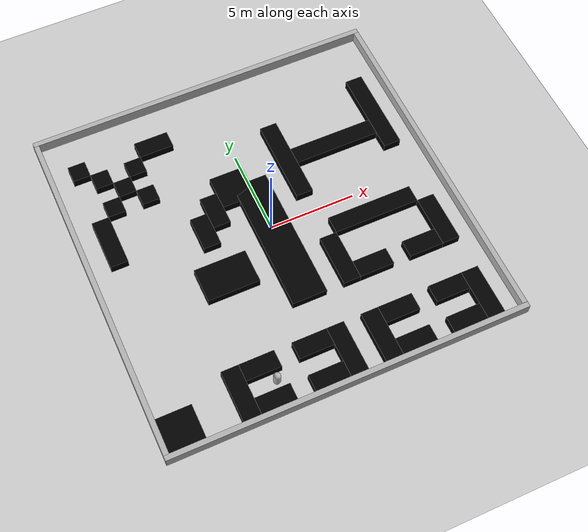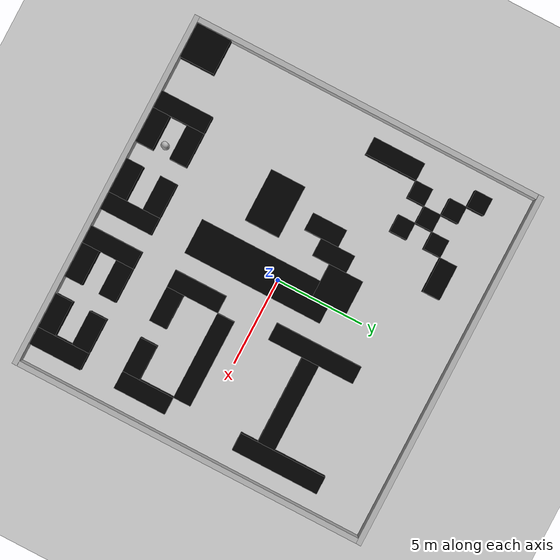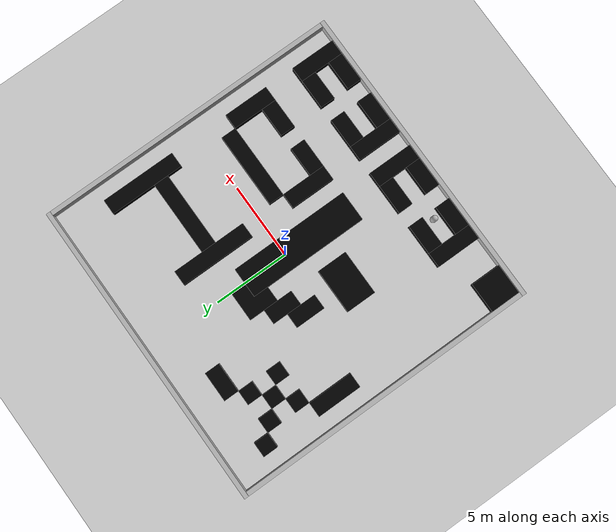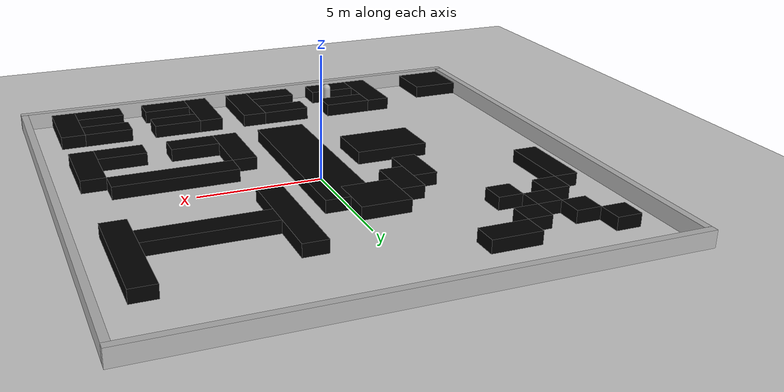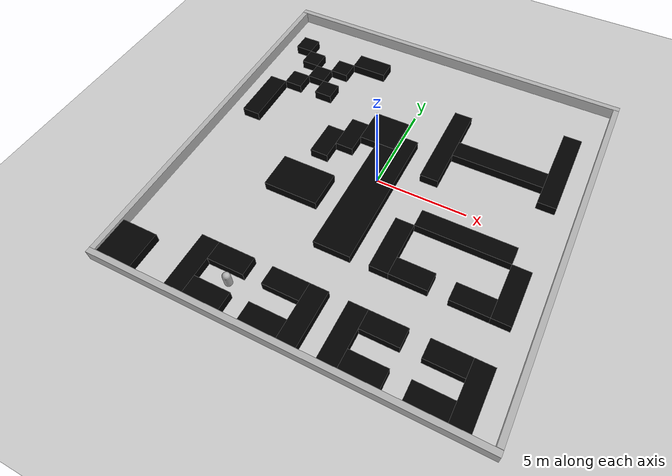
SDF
<sdf version="1.10">
 <world name="empty">
  <model name="ground_plane">
   <static>true</static>
   <link name="link">
    <collision name="collision">
     <geometry><plane><normal>0 0 1</normal><size>100 100</size></plane></geometry>
    </collision>
    <visual name="visual">
     <geometry><plane><normal>0 0 1</normal><size>100 100</size></plane></geometry>
     <material>
      <ambient>0.800000012 0.800000012 0.800000012 1</ambient>
      <diffuse>0.800000012 0.800000012 0.800000012 1</diffuse>
      <specular>0.800000012 0.800000012 0.800000012 1</specular>
     </material>
    </visual>
    <inertial>
     <mass>100</mass>
     <inertia><ixx>1</ixx><ixy>0</ixy><ixz>0</ixz><iyy>1</iyy><iyz>0</iyz><izz>1</izz></inertia>
    </inertial>
   </link>
  </model>
  <model name="left_wall">
   <pose>-10.15 0 0.14999999999999999 0 0 0</pose>
   <link name="left_wall_link">
    <inertial>
     <inertia><ixx>0.16666</ixx><ixy>0</ixy><ixz>0</ixz><iyy>0.16666</iyy><iyz>0</iyz><izz>0.16666</izz></inertia>
     <mass>1</mass>
    </inertial>
    <collision name="left_wall_collision">
     <geometry><box><size>0.29999999999999999 20 1</size></box></geometry>
    </collision>
    <visual name="left_wall_visual">
     <geometry><box><size>0.29999999999999999 20 1</size></box></geometry>
     <material>
      <ambient>0.300000012 0.300000012 0.300000012 1</ambient>
      <diffuse>0.699999988 0.699999988 0.699999988 1</diffuse>
      <specular>1 1 1 1</specular>
     </material>
    </visual>
   </link>
   <static>true</static>
  </model>
  <model name="right_wall">
   <pose>10.15 0 0.14999999999999999 0 0 0</pose>
   <link name="right_wall_link">
    <inertial>
     <inertia><ixx>0.16666</ixx><ixy>0</ixy><ixz>0</ixz><iyy>0.16666</iyy><iyz>0</iyz><izz>0.16666</izz></inertia>
     <mass>100</mass>
    </inertial>
    <collision name="right_wall_collision">
     <geometry><box><size>0.29999999999999999 20 1</size></box></geometry>
    </collision>
    <visual name="right_wall_visual">
     <geometry><box><size>0.29999999999999999 20 1</size></box></geometry>
     <material>
      <ambient>0.300000012 0.300000012 0.300000012 1</ambient>
      <diffuse>0.699999988 0.699999988 0.699999988 1</diffuse>
      <specular>1 1 1 1</specular>
     </material>
    </visual>
   </link>
   <static>true</static>
  </model>
  <model name="top_wall">
   <pose>0 10.15 0.14999999999999999 0 0 1.5699999999999998</pose>
   <link name="top_wall_link">
    <inertial>
     <inertia><ixx>0.16666</ixx><ixy>0</ixy><ixz>0</ixz><iyy>0.16666</iyy><iyz>0</iyz><izz>0.16666</izz></inertia>
     <mass>100</mass>
    </inertial>
    <collision name="top_wall_collision">
     <geometry><box><size>0.29999999999999999 20 1</size></box></geometry>
    </collision>
    <visual name="top_wall_visual">
     <geometry><box><size>0.29999999999999999 20.600000000000001 1</size></box></geometry>
     <material>
      <ambient>0.300000012 0.300000012 0.300000012 1</ambient>
      <diffuse>0.699999988 0.699999988 0.699999988 1</diffuse>
      <specular>1 1 1 1</specular>
     </material>
    </visual>
   </link>
   <static>true</static>
  </model>
  <model name="bottom_wall">
   <pose>0 -10.15 0.14999999999999999 0 0 1.5699999999999998</pose>
   <link name="bottom_wall_link">
    <inertial>
     <inertia><ixx>0.16666</ixx><ixy>0</ixy><ixz>0</ixz><iyy>0.16666</iyy><iyz>0</iyz><izz>0.16666</izz></inertia>
     <mass>100</mass>
    </inertial>
    <collision name="bottom_wall_collision">
     <geometry><box><size>0.29999999999999999 20 1</size></box></geometry>
    </collision>
    <visual name="bottom_wall_visual">
     <geometry><box><size>0.29999999999999999 20.600000000000001 1</size></box></geometry>
     <material>
      <ambient>0.300000012 0.300000012 0.300000012 1</ambient>
      <diffuse>0.699999988 0.699999988 0.699999988 1</diffuse>
      <specular>1 1 1 1</specular>
     </material>
    </visual>
   </link>
   <static>true</static>
  </model>
  <model name="black_box_1x1_1">
   <static>true</static>
   <pose>-8.5 7.5 0 0 0 0</pose>
   <link name="link">
    <collision name="collision"><geometry><box><size>1 1 1</size></box></geometry></collision>
    <visual name="visual">
     <geometry><box><size>1 1 1</size></box></geometry>
     <material><ambient>0 0 0 1</ambient></material>
    </visual>
    <inertial>
     <mass>1</mass>
     <inertia><ixx>1</ixx><ixy>0</ixy><ixz>0</ixz><iyy>1</iyy><iyz>0</iyz><izz>1</izz></inertia>
    </inertial>
   </link>
  </model>
  <model name="black_box_1x1_2">
   <static>true</static>
   <pose>-6.5 5.5 0 0 0 0</pose>
   <link name="link">
    <collision name="collision"><geometry><box><size>1 1 1</size></box></geometry></collision>
    <visual name="visual">
     <geometry><box><size>1 1 1</size></box></geometry>
     <material><ambient>0 0 0 1</ambient></material>
    </visual>
    <inertial>
     <mass>1</mass>
     <inertia><ixx>1</ixx><ixy>0</ixy><ixz>0</ixz><iyy>1</iyy><iyz>0</iyz><izz>1</izz></inertia>
    </inertial>
   </link>
  </model>
  <model name="black_box_1x1_3">
   <static>true</static>
   <pose>-7.5 6.5 0 0 0 0</pose>
   <link name="link">
    <collision name="collision"><geometry><box><size>1 1 1</size></box></geometry></collision>
    <visual name="visual">
     <geometry><box><size>1 1 1</size></box></geometry>
     <material><ambient>0 0 0 1</ambient></material>
    </visual>
    <inertial>
     <mass>1</mass>
     <inertia><ixx>1</ixx><ixy>0</ixy><ixz>0</ixz><iyy>1</iyy><iyz>0</iyz><izz>1</izz></inertia>
    </inertial>
   </link>
  </model>
  <model name="black_box_1x1_4">
   <static>true</static>
   <pose>-5.5 6.5 0 0 0 0</pose>
   <link name="link">
    <collision name="collision"><geometry><box><size>1 1 1</size></box></geometry></collision>
    <visual name="visual">
     <geometry><box><size>1 1 1</size></box></geometry>
     <material><ambient>0 0 0 1</ambient></material>
    </visual>
    <inertial>
     <mass>1</mass>
     <inertia><ixx>1</ixx><ixy>0</ixy><ixz>0</ixz><iyy>1</iyy><iyz>0</iyz><izz>1</izz></inertia>
    </inertial>
   </link>
  </model>
  <model name="black_box_1x1_5">
   <static>true</static>
   <pose>-5.5 4.5 0 0 0 0</pose>
   <link name="link">
    <collision name="collision"><geometry><box><size>1 1 1</size></box></geometry></collision>
    <visual name="visual">
     <geometry><box><size>1 1 1</size></box></geometry>
     <material><ambient>0 0 0 1</ambient></material>
    </visual>
    <inertial>
     <mass>1</mass>
     <inertia><ixx>1</ixx><ixy>0</ixy><ixz>0</ixz><iyy>1</iyy><iyz>0</iyz><izz>1</izz></inertia>
    </inertial>
   </link>
  </model>
  <model name="black_box_1x1_6">
   <static>true</static>
   <pose>-7.5 4.5 0 0 0 0</pose>
   <link name="link">
    <collision name="collision"><geometry><box><size>1 1 1</size></box></geometry></collision>
    <visual name="visual">
     <geometry><box><size>1 1 1</size></box></geometry>
     <material><ambient>0 0 0 1</ambient></material>
    </visual>
    <inertial>
     <mass>1</mass>
     <inertia><ixx>1</ixx><ixy>0</ixy><ixz>0</ixz><iyy>1</iyy><iyz>0</iyz><izz>1</izz></inertia>
    </inertial>
   </link>
  </model>
  <model name="black_box_1x3_1">
   <static>true</static>
   <pose>8.5 -8.5 0 0 0 0</pose>
   <link name="link">
    <collision name="collision"><geometry><box><size>1 3 1</size></box></geometry></collision>
    <visual name="visual">
     <geometry><box><size>1 3 1</size></box></geometry>
     <material><ambient>0 0 0 1</ambient></material>
    </visual>
    <inertial>
     <mass>2</mass>
     <inertia><ixx>1</ixx><ixy>0</ixy><ixz>0</ixz><iyy>1</iyy><iyz>0</iyz><izz>1</izz></inertia>
    </inertial>
   </link>
  </model>
  <model name="black_box_1x3_2">
   <static>true</static>
   <pose>0.5 -8.5 0 0 0 0</pose>
   <link name="link">
    <collision name="collision"><geometry><box><size>1 3 1</size></box></geometry></collision>
    <visual name="visual">
     <geometry><box><size>1 3 1</size></box></geometry>
     <material><ambient>0 0 0 1</ambient></material>
    </visual>
    <inertial>
     <mass>2</mass>
     <inertia><ixx>1</ixx><ixy>0</ixy><ixz>0</ixz><iyy>1</iyy><iyz>0</iyz><izz>1</izz></inertia>
    </inertial>
   </link>
  </model>
  <model name="black_box_1x3_3">
   <static>true</static>
   <pose>-5.5 -8.5 0 0 0 0</pose>
   <link name="link">
    <collision name="collision"><geometry><box><size>1 3 1</size></box></geometry></collision>
    <visual name="visual">
     <geometry><box><size>1 3 1</size></box></geometry>
     <material><ambient>0 0 0 1</ambient></material>
    </visual>
    <inertial>
     <mass>2</mass>
     <inertia><ixx>1</ixx><ixy>0</ixy><ixz>0</ixz><iyy>1</iyy><iyz>0</iyz><izz>1</izz></inertia>
    </inertial>
   </link>
  </model>
  <model name="black_box_1x3_4">
   <static>true</static>
   <pose>2.5 -8.5 0 0 0 0</pose>
   <link name="link">
    <collision name="collision"><geometry><box><size>1 3 1</size></box></geometry></collision>
    <visual name="visual">
     <geometry><box><size>1 3 1</size></box></geometry>
     <material><ambient>0 0 0 1</ambient></material>
    </visual>
    <inertial>
     <mass>2</mass>
     <inertia><ixx>1</ixx><ixy>0</ixy><ixz>0</ixz><iyy>1</iyy><iyz>0</iyz><izz>1</izz></inertia>
    </inertial>
   </link>
  </model>
  <model name="black_box_1x3_5">
   <static>true</static>
   <pose>2.5 -3.5 0 0 0 0</pose>
   <link name="link">
    <collision name="collision"><geometry><box><size>1 3 1</size></box></geometry></collision>
    <visual name="visual">
     <geometry><box><size>1 3 1</size></box></geometry>
     <material><ambient>0 0 0 1</ambient></material>
    </visual>
    <inertial>
     <mass>2</mass>
     <inertia><ixx>1</ixx><ixy>0</ixy><ixz>0</ixz><iyy>1</iyy><iyz>0</iyz><izz>1</izz></inertia>
    </inertial>
   </link>
  </model>
  <model name="black_box_1x3_6">
   <static>true</static>
   <pose>-8.5 2.5 0 0 0 0</pose>
   <link name="link">
    <collision name="collision"><geometry><box><size>1 3 1</size></box></geometry></collision>
    <visual name="visual">
     <geometry><box><size>1 3 1</size></box></geometry>
     <material><ambient>0 0 0 1</ambient></material>
    </visual>
    <inertial>
     <mass>2</mass>
     <inertia><ixx>1</ixx><ixy>0</ixy><ixz>0</ixz><iyy>1</iyy><iyz>0</iyz><izz>1</izz></inertia>
    </inertial>
   </link>
  </model>
  <model name="black_box_1x5_1">
   <static>true</static>
   <pose>2.5 3.5 0 0 0 0</pose>
   <link name="link">
    <collision name="collision"><geometry><box><size>1 5 1</size></box></geometry></collision>
    <visual name="visual">
     <geometry><box><size>1 5 1</size></box></geometry>
     <material><ambient>0 0 0 1</ambient></material>
    </visual>
    <inertial>
     <mass>2</mass>
     <inertia><ixx>1</ixx><ixy>0</ixy><ixz>0</ixz><iyy>1</iyy><iyz>0</iyz><izz>1</izz></inertia>
    </inertial>
   </link>
  </model>
  <model name="black_box_1x5_2">
   <static>true</static>
   <pose>8.5 4.5 0 0 0 0</pose>
   <link name="link">
    <collision name="collision"><geometry><box><size>1 5 1</size></box></geometry></collision>
    <visual name="visual">
     <geometry><box><size>1 5 1</size></box></geometry>
     <material><ambient>0 0 0 1</ambient></material>
    </visual>
    <inertial>
     <mass>2</mass>
     <inertia><ixx>1</ixx><ixy>0</ixy><ixz>0</ixz><iyy>1</iyy><iyz>0</iyz><izz>1</izz></inertia>
    </inertial>
   </link>
  </model>
  <model name="black_box_1x3_8">
   <static>true</static>
   <pose>8.5 -3.5 0 0 0 0</pose>
   <link name="link">
    <collision name="collision"><geometry><box><size>1 3 1</size></box></geometry></collision>
    <visual name="visual">
     <geometry><box><size>1 3 1</size></box></geometry>
     <material><ambient>0 0 0 1</ambient></material>
    </visual>
    <inertial>
     <mass>2</mass>
     <inertia><ixx>1</ixx><ixy>0</ixy><ixz>0</ixz><iyy>1</iyy><iyz>0</iyz><izz>1</izz></inertia>
    </inertial>
   </link>
  </model>
  <model name="black_box_2x1_1">
   <static>true</static>
   <pose>7 -9.5 0 0 0 0</pose>
   <link name="link">
    <collision name="collision"><geometry><box><size>2 1 1</size></box></geometry></collision>
    <visual name="visual">
     <geometry><box><size>2 1 1</size></box></geometry>
     <material><ambient>0 0 0 1</ambient></material>
    </visual>
    <inertial>
     <mass>2</mass>
     <inertia><ixx>1</ixx><ixy>0</ixy><ixz>0</ixz><iyy>1</iyy><iyz>0</iyz><izz>1</izz></inertia>
    </inertial>
   </link>
  </model>
  <model name="black_box_2x1_2">
   <static>true</static>
   <pose>7 -7.5 0 0 0 0</pose>
   <link name="link">
    <collision name="collision"><geometry><box><size>2 1 1</size></box></geometry></collision>
    <visual name="visual">
     <geometry><box><size>2 1 1</size></box></geometry>
     <material><ambient>0 0 0 1</ambient></material>
    </visual>
    <inertial>
     <mass>2</mass>
     <inertia><ixx>1</ixx><ixy>0</ixy><ixz>0</ixz><iyy>1</iyy><iyz>0</iyz><izz>1</izz></inertia>
    </inertial>
   </link>
  </model>
  <model name="black_box_2x1_3">
   <static>true</static>
   <pose>4 -9.5 0 0 0 0</pose>
   <link name="link">
    <collision name="collision"><geometry><box><size>2 1 1</size></box></geometry></collision>
    <visual name="visual">
     <geometry><box><size>2 1 1</size></box></geometry>
     <material><ambient>0 0 0 1</ambient></material>
    </visual>
    <inertial>
     <mass>2</mass>
     <inertia><ixx>1</ixx><ixy>0</ixy><ixz>0</ixz><iyy>1</iyy><iyz>0</iyz><izz>1</izz></inertia>
    </inertial>
   </link>
  </model>
  <model name="black_box_2x1_4">
   <static>true</static>
   <pose>4 -7.5 0 0 0 0</pose>
   <link name="link">
    <collision name="collision"><geometry><box><size>2 1 1</size></box></geometry></collision>
    <visual name="visual">
     <geometry><box><size>2 1 1</size></box></geometry>
     <material><ambient>0 0 0 1</ambient></material>
    </visual>
    <inertial>
     <mass>2</mass>
     <inertia><ixx>1</ixx><ixy>0</ixy><ixz>0</ixz><iyy>1</iyy><iyz>0</iyz><izz>1</izz></inertia>
    </inertial>
   </link>
  </model>
  <model name="black_box_2x1_5">
   <static>true</static>
   <pose>-1 -9.5 0.0030920000000000001 0 0 0</pose>
   <link name="link">
    <collision name="collision"><geometry><box><size>2 1 1</size></box></geometry></collision>
    <visual name="visual">
     <geometry><box><size>2 1 1</size></box></geometry>
     <material><ambient>0 0 0 1</ambient></material>
    </visual>
    <inertial>
     <mass>2</mass>
     <inertia><ixx>1</ixx><ixy>0</ixy><ixz>0</ixz><iyy>1</iyy><iyz>0</iyz><izz>1</izz></inertia>
    </inertial>
   </link>
  </model>
  <model name="black_box_2x1_6">
   <static>true</static>
   <pose>7 -4.5 0 0 0 0</pose>
   <link name="link">
    <collision name="collision"><geometry><box><size>2 1 1</size></box></geometry></collision>
    <visual name="visual">
     <geometry><box><size>2 1 1</size></box></geometry>
     <material><ambient>0 0 0 1</ambient></material>
    </visual>
    <inertial>
     <mass>2</mass>
     <inertia><ixx>1</ixx><ixy>0</ixy><ixz>0</ixz><iyy>1</iyy><iyz>0</iyz><izz>1</izz></inertia>
    </inertial>
   </link>
  </model>
  <model name="black_box_2x1_7">
   <static>true</static>
   <pose>4 -4.5 0 0 0 0</pose>
   <link name="link">
    <collision name="collision"><geometry><box><size>2 1 1</size></box></geometry></collision>
    <visual name="visual">
     <geometry><box><size>2 1 1</size></box></geometry>
     <material><ambient>0 0 0 1</ambient></material>
    </visual>
    <inertial>
     <mass>2</mass>
     <inertia><ixx>1</ixx><ixy>0</ixy><ixz>0</ixz><iyy>1</iyy><iyz>0</iyz><izz>1</izz></inertia>
    </inertial>
   </link>
  </model>
  <model name="black_box_2x1_8">
   <static>true</static>
   <pose>-1 -7.5 0 0 0 0</pose>
   <link name="link">
    <collision name="collision"><geometry><box><size>2 1 1</size></box></geometry></collision>
    <visual name="visual">
     <geometry><box><size>2 1 1</size></box></geometry>
     <material><ambient>0 0 0 1</ambient></material>
    </visual>
    <inertial>
     <mass>2</mass>
     <inertia><ixx>1</ixx><ixy>0</ixy><ixz>0</ixz><iyy>1</iyy><iyz>0</iyz><izz>1</izz></inertia>
    </inertial>
   </link>
  </model>
  <model name="black_box_2x1_9">
   <static>true</static>
   <pose>-4 -7.5 0 0 0 0</pose>
   <link name="link">
    <collision name="collision"><geometry><box><size>2 1 1</size></box></geometry></collision>
    <visual name="visual">
     <geometry><box><size>2 1 1</size></box></geometry>
     <material><ambient>0 0 0 1</ambient></material>
    </visual>
    <inertial>
     <mass>2</mass>
     <inertia><ixx>1</ixx><ixy>0</ixy><ixz>0</ixz><iyy>1</iyy><iyz>0</iyz><izz>1</izz></inertia>
    </inertial>
   </link>
  </model>
  <model name="black_box_2x1_10">
   <static>true</static>
   <pose>-4 -9.5 0 0 0 0</pose>
   <link name="link">
    <collision name="collision"><geometry><box><size>2 1 1</size></box></geometry></collision>
    <visual name="visual">
     <geometry><box><size>2 1 1</size></box></geometry>
     <material><ambient>0 0 0 1</ambient></material>
    </visual>
    <inertial>
     <mass>2</mass>
     <inertia><ixx>1</ixx><ixy>0</ixy><ixz>0</ixz><iyy>1</iyy><iyz>0</iyz><izz>1</izz></inertia>
    </inertial>
   </link>
  </model>
  <model name="black_box_2x1_11">
   <static>true</static>
   <pose>-4 7.5 0 0 0 0</pose>
   <link name="link">
    <collision name="collision"><geometry><box><size>2 1 1</size></box></geometry></collision>
    <visual name="visual">
     <geometry><box><size>2 1 1</size></box></geometry>
     <material><ambient>0 0 0 1</ambient></material>
    </visual>
    <inertial>
     <mass>2</mass>
     <inertia><ixx>1</ixx><ixy>0</ixy><ixz>0</ixz><iyy>1</iyy><iyz>0</iyz><izz>1</izz></inertia>
    </inertial>
   </link>
  </model>
  <model name="black_box_2x2_1">
   <static>true</static>
   <pose>-1 3 0 0 0 0</pose>
   <link name="link">
    <collision name="collision"><geometry><box><size>2 2 1</size></box></geometry></collision>
    <visual name="visual">
     <geometry><box><size>2 2 1</size></box></geometry>
     <material><ambient>0 0 0 1</ambient></material>
    </visual>
    <inertial>
     <mass>4</mass>
     <inertia><ixx>1</ixx><ixy>0</ixy><ixz>0</ixz><iyy>1</iyy><iyz>0</iyz><izz>1</izz></inertia>
    </inertial>
   </link>
  </model>
  <model name="black_box_2x2_2">
   <static>true</static>
   <pose>-9 -9 0 0 0 0</pose>
   <link name="link">
    <collision name="collision"><geometry><box><size>2 2 1</size></box></geometry></collision>
    <visual name="visual">
     <geometry><box><size>2 2 1</size></box></geometry>
     <material><ambient>0 0 0 1</ambient></material>
    </visual>
    <inertial>
     <mass>4</mass>
     <inertia><ixx>1</ixx><ixy>0</ixy><ixz>0</ixz><iyy>1</iyy><iyz>0</iyz><izz>1</izz></inertia>
    </inertial>
   </link>
  </model>
  <model name="black_box_2x8_1">
   <static>true</static>
   <pose>0 -1 0 0 0 0</pose>
   <link name="link">
    <collision name="collision"><geometry><box><size>2 8 1</size></box></geometry></collision>
    <visual name="visual">
     <geometry><box><size>2 8 1</size></box></geometry>
     <material><ambient>0 0 0 1</ambient></material>
    </visual>
    <inertial>
     <mass>4</mass>
     <inertia><ixx>1</ixx><ixy>0</ixy><ixz>0</ixz><iyy>1</iyy><iyz>0</iyz><izz>1</izz></inertia>
    </inertial>
   </link>
  </model>
  <model name="black_box_1x2_1">
   <static>true</static>
   <pose>-2.5 2 0 0 0 0</pose>
   <link name="link">
    <collision name="collision"><geometry><box><size>1 2 1</size></box></geometry></collision>
    <visual name="visual">
     <geometry><box><size>1 2 1</size></box></geometry>
     <material><ambient>0 0 0 1</ambient></material>
    </visual>
    <inertial>
     <mass>2</mass>
     <inertia><ixx>1</ixx><ixy>0</ixy><ixz>0</ixz><iyy>1</iyy><iyz>0</iyz><izz>1</izz></inertia>
    </inertial>
   </link>
  </model>
  <model name="black_box_1x2_2">
   <static>true</static>
   <pose>-3.5 1 0 0 0 0</pose>
   <link name="link">
    <collision name="collision"><geometry><box><size>1 2 1</size></box></geometry></collision>
    <visual name="visual">
     <geometry><box><size>1 2 1</size></box></geometry>
     <material><ambient>0 0 0 1</ambient></material>
    </visual>
    <inertial>
     <mass>2</mass>
     <inertia><ixx>1</ixx><ixy>0</ixy><ixz>0</ixz><iyy>1</iyy><iyz>0</iyz><izz>1</izz></inertia>
    </inertial>
   </link>
  </model>
  <model name="black_box_3x2_1">
   <static>true</static>
   <pose>-3.5 -2 0 0 0 0</pose>
   <link name="link">
    <collision name="collision"><geometry><box><size>3 2 1</size></box></geometry></collision>
    <visual name="visual">
     <geometry><box><size>3 2 1</size></box></geometry>
     <material><ambient>0 0 0 1</ambient></material>
    </visual>
    <inertial>
     <mass>6</mass>
     <inertia><ixx>1</ixx><ixy>0</ixy><ixz>0</ixz><iyy>1</iyy><iyz>0</iyz><izz>1</izz></inertia>
    </inertial>
   </link>
  </model>
  <model name="black_box_5x1_1">
   <static>true</static>
   <pose>5.5 -1.5 0 0 0 0</pose>
   <link name="link">
    <collision name="collision"><geometry><box><size>5 1 1</size></box></geometry></collision>
    <visual name="visual">
     <geometry><box><size>5 1 1</size></box></geometry>
     <material><ambient>0 0 0 1</ambient></material>
    </visual>
    <inertial>
     <mass>2</mass>
     <inertia><ixx>1</ixx><ixy>0</ixy><ixz>0</ixz><iyy>1</iyy><iyz>0</iyz><izz>1</izz></inertia>
    </inertial>
   </link>
  </model>
  <model name="black_box_5x1_2">
   <static>true</static>
   <pose>5.5 3.5 0 0 0 0</pose>
   <link name="link">
    <collision name="collision"><geometry><box><size>5 1 1</size></box></geometry></collision>
    <visual name="visual">
     <geometry><box><size>5 1 1</size></box></geometry>
     <material><ambient>0 0 0 1</ambient></material>
    </visual>
    <inertial>
     <mass>2</mass>
     <inertia><ixx>1</ixx><ixy>0</ixy><ixz>0</ixz><iyy>1</iyy><iyz>0</iyz><izz>1</izz></inertia>
    </inertial>
   </link>
  </model>
  <model name="capsule">
   <pose>-3.5 -8.5 0.5 0 0 0</pose>
   <link name="capsule_link">
    <inertial>
     <inertia>
      <ixx>0.074153999999999998</ixx>
      <ixy>0</ixy>
      <ixz>0</ixz>
      <iyy>0.074153999999999998</iyy>
      <iyz>0</iyz>
      <izz>0.018769000000000001</izz>
     </inertia>
     <mass>1</mass>
    </inertial>
    <visual name="capsule_visual">
     <geometry>
      <capsule><radius>0.20000000000000001</radius><length>0.59999999999999998</length></capsule>
     </geometry>
     <material>
      <ambient>0.300000012 0.300000012 0.300000012 1</ambient>
      <diffuse>0.699999988 0.699999988 0.699999988 1</diffuse>
      <specular>1 1 1 1</specular>
     </material>
    </visual>
   </link>
   <static>true</static>
  </model>
 </world>
</sdf>
